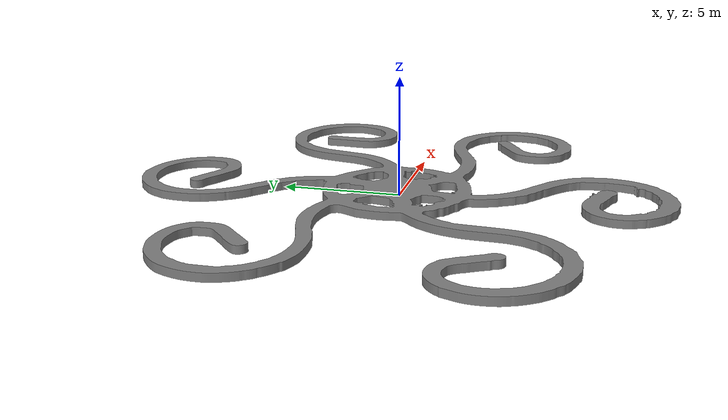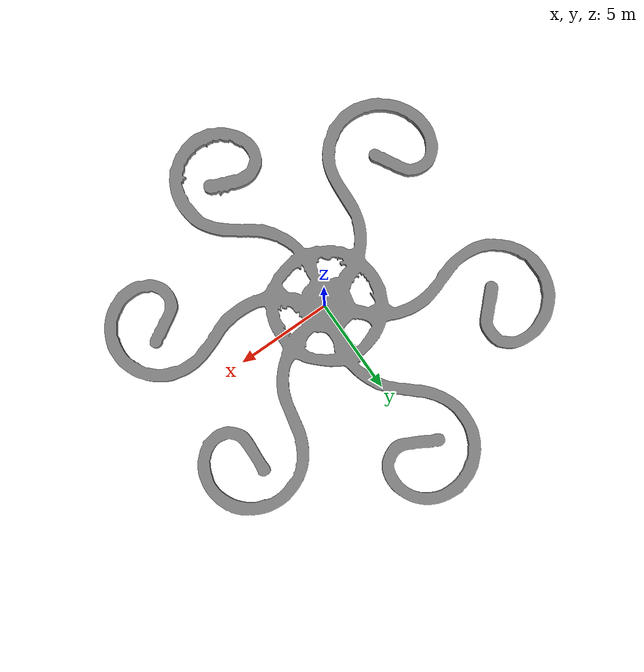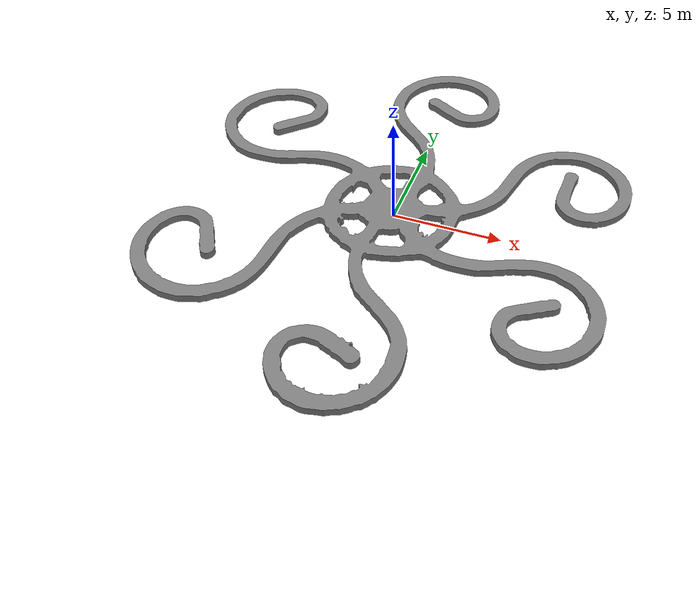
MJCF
<mujoco model="wine-rack-spiral-center-centered-z">
  <default>
    <default class="visual">
      <geom group="2" type="mesh" contype="0" conaffinity="0"/>
    </default>
    <default class="collision">
      <geom group="3" type="mesh"/>
    </default>
  </default>
  <asset>
    <mesh file="wine_glass_spiral_rack_center.obj"/>
    <mesh file="wine_glass_spiral_rack_center_0.obj"/>
    <mesh file="wine_glass_spiral_rack_center_1.obj"/>
    <mesh file="wine_glass_spiral_rack_center_2.obj"/>
    <mesh file="wine_glass_spiral_rack_center_3.obj"/>
    <mesh file="wine_glass_spiral_rack_center_4.obj"/>
    <mesh file="wine_glass_spiral_rack_center_5.obj"/>
    <mesh file="wine_glass_spiral_rack_center_6.obj"/>
    <mesh file="wine_glass_spiral_rack_center_7.obj"/>
    <mesh file="wine_glass_spiral_rack_center_8.obj"/>
    <mesh file="wine_glass_spiral_rack_center_9.obj"/>
    <mesh file="wine_glass_spiral_rack_center_10.obj"/>
    <mesh file="wine_glass_spiral_rack_center_11.obj"/>
    <mesh file="wine_glass_spiral_rack_center_12.obj"/>
    <mesh file="wine_glass_spiral_rack_center_13.obj"/>
    <mesh file="wine_glass_spiral_rack_center_14.obj"/>
    <mesh file="wine_glass_spiral_rack_center_15.obj"/>
    <mesh file="wine_glass_spiral_rack_center_16.obj"/>
    <mesh file="wine_glass_spiral_rack_center_17.obj"/>
    <mesh file="wine_glass_spiral_rack_center_18.obj"/>
    <mesh file="wine_glass_spiral_rack_center_19.obj"/>
    <mesh file="wine_glass_spiral_rack_center_20.obj"/>
    <mesh file="wine_glass_spiral_rack_center_21.obj"/>
    <mesh file="wine_glass_spiral_rack_center_22.obj"/>
    <mesh file="wine_glass_spiral_rack_center_23.obj"/>
    <mesh file="wine_glass_spiral_rack_center_24.obj"/>
    <mesh file="wine_glass_spiral_rack_center_25.obj"/>
    <mesh file="wine_glass_spiral_rack_center_26.obj"/>
    <mesh file="wine_glass_spiral_rack_center_27.obj"/>
    <mesh file="wine_glass_spiral_rack_center_28.obj"/>
    <mesh file="wine_glass_spiral_rack_center_29.obj"/>
    <mesh file="wine_glass_spiral_rack_center_30.obj"/>
    <mesh file="wine_glass_spiral_rack_center_31.obj"/>
    <mesh file="wine_glass_spiral_rack_center_32.obj"/>
    <mesh file="wine_glass_spiral_rack_center_33.obj"/>
    <mesh file="wine_glass_spiral_rack_center_34.obj"/>
    <mesh file="wine_glass_spiral_rack_center_35.obj"/>
    <mesh file="wine_glass_spiral_rack_center_36.obj"/>
    <mesh file="wine_glass_spiral_rack_center_37.obj"/>
    <mesh file="wine_glass_spiral_rack_center_38.obj"/>
    <mesh file="wine_glass_spiral_rack_center_39.obj"/>
    <mesh file="wine_glass_spiral_rack_center_40.obj"/>
    <mesh file="wine_glass_spiral_rack_center_41.obj"/>
    <mesh file="wine_glass_spiral_rack_center_42.obj"/>
    <mesh file="wine_glass_spiral_rack_center_43.obj"/>
    <mesh file="wine_glass_spiral_rack_center_44.obj"/>
    <mesh file="wine_glass_spiral_rack_center_45.obj"/>
    <mesh file="wine_glass_spiral_rack_center_46.obj"/>
    <mesh file="wine_glass_spiral_rack_center_47.obj"/>
    <mesh file="wine_glass_spiral_rack_center_48.obj"/>
    <mesh file="wine_glass_spiral_rack_center_49.obj"/>
    <mesh file="wine_glass_spiral_rack_center_50.obj"/>
    <mesh file="wine_glass_spiral_rack_center_51.obj"/>
    <mesh file="wine_glass_spiral_rack_center_52.obj"/>
    <mesh file="wine_glass_spiral_rack_center_53.obj"/>
    <mesh file="wine_glass_spiral_rack_center_54.obj"/>
    <mesh file="wine_glass_spiral_rack_center_55.obj"/>
    <mesh file="wine_glass_spiral_rack_center_56.obj"/>
    <mesh file="wine_glass_spiral_rack_center_57.obj"/>
    <mesh file="wine_glass_spiral_rack_center_58.obj"/>
    <mesh file="wine_glass_spiral_rack_center_59.obj"/>
    <mesh file="wine_glass_spiral_rack_center_60.obj"/>
    <mesh file="wine_glass_spiral_rack_center_61.obj"/>
    <mesh file="wine_glass_spiral_rack_center_62.obj"/>
    <mesh file="wine_glass_spiral_rack_center_63.obj"/>
    <mesh file="wine_glass_spiral_rack_center_64.obj"/>
    <mesh file="wine_glass_spiral_rack_center_65.obj"/>
    <mesh file="wine_glass_spiral_rack_center_66.obj"/>
  </asset>
  <worldbody>
    <body name="wine-rack-spiral-center-centered-z">
      <geom mesh="wine_glass_spiral_rack_center" class="visual"/>
      <geom mesh="wine_glass_spiral_rack_center_0" rgba="0.8925728899999805 0.22426359224605852 0.6465876229444013 1" class="collision"/>
      <geom mesh="wine_glass_spiral_rack_center_1" rgba="0.563824373768247 0.31326848932433893 0.2696090022678215 1" class="collision"/>
      <geom mesh="wine_glass_spiral_rack_center_2" rgba="0.2693413035235006 0.4473219167775049 0.4481135257984816 1" class="collision"/>
      <geom mesh="wine_glass_spiral_rack_center_3" rgba="0.41589189135813 0.7247092646962628 0.47977197456968335 1" class="collision"/>
      <geom mesh="wine_glass_spiral_rack_center_4" rgba="0.7574412127467622 0.8671529910961493 0.06249166184478361 1" class="collision"/>
      <geom mesh="wine_glass_spiral_rack_center_5" rgba="0.02810706199573898 0.933726216587625 0.17075529612765794 1" class="collision"/>
      <geom mesh="wine_glass_spiral_rack_center_6" rgba="0.5472542947396353 0.09746607880058511 0.6654954536175696 1" class="collision"/>
      <geom mesh="wine_glass_spiral_rack_center_7" rgba="0.17252111975065476 0.08537580465950134 0.9628981741798208 1" class="collision"/>
      <geom mesh="wine_glass_spiral_rack_center_8" rgba="0.5426556793281766 0.7943952874043113 0.196481522487976 1" class="collision"/>
      <geom mesh="wine_glass_spiral_rack_center_9" rgba="0.5731076728133042 0.13882029230171533 0.2901281249287494 1" class="collision"/>
      <geom mesh="wine_glass_spiral_rack_center_10" rgba="0.9015141785266471 0.29360678876672075 0.0030480629892083444 1" class="collision"/>
      <geom mesh="wine_glass_spiral_rack_center_11" rgba="0.3645138407000741 0.36411696534534255 0.06514030067294097 1" class="collision"/>
      <geom mesh="wine_glass_spiral_rack_center_12" rgba="0.6624679570285397 0.6598955628804926 0.6527800972817533 1" class="collision"/>
      <geom mesh="wine_glass_spiral_rack_center_13" rgba="0.043847256299164084 0.8382026283280729 0.689903103349682 1" class="collision"/>
      <geom mesh="wine_glass_spiral_rack_center_14" rgba="0.23675086792216637 0.3681739196363192 0.7226564493413321 1" class="collision"/>
      <geom mesh="wine_glass_spiral_rack_center_15" rgba="0.5827174349017273 0.22216723273634398 0.6110992140179832 1" class="collision"/>
      <geom mesh="wine_glass_spiral_rack_center_16" rgba="0.2061262642254731 0.06882031283635859 0.4518584855955724 1" class="collision"/>
      <geom mesh="wine_glass_spiral_rack_center_17" rgba="0.020370068091669746 0.686060019024754 0.05037521725343197 1" class="collision"/>
      <geom mesh="wine_glass_spiral_rack_center_18" rgba="0.2295389664276415 0.27765577349424786 0.8501025063066058 1" class="collision"/>
      <geom mesh="wine_glass_spiral_rack_center_19" rgba="0.08642005542000086 0.7240647471924383 0.9673722265979504 1" class="collision"/>
      <geom mesh="wine_glass_spiral_rack_center_20" rgba="0.018690593517052823 0.7176739896104836 0.46186552620103105 1" class="collision"/>
      <geom mesh="wine_glass_spiral_rack_center_21" rgba="0.12506302485859078 0.6395527493829003 0.8148516376197896 1" class="collision"/>
      <geom mesh="wine_glass_spiral_rack_center_22" rgba="0.9919034629436673 0.6239730838235426 0.19987963586197488 1" class="collision"/>
      <geom mesh="wine_glass_spiral_rack_center_23" rgba="0.6398732310721867 0.33481284912081455 0.560989476632651 1" class="collision"/>
      <geom mesh="wine_glass_spiral_rack_center_24" rgba="0.04955720674067421 0.37312880229239787 0.22965506955342174 1" class="collision"/>
      <geom mesh="wine_glass_spiral_rack_center_25" rgba="0.7417033312059753 0.09957898555780831 0.9482474370258972 1" class="collision"/>
      <geom mesh="wine_glass_spiral_rack_center_26" rgba="0.38344595197812703 0.9563889886910681 0.10617121338973357 1" class="collision"/>
      <geom mesh="wine_glass_spiral_rack_center_27" rgba="0.7175192495540174 0.3603783267256927 0.46290438769652764 1" class="collision"/>
      <geom mesh="wine_glass_spiral_rack_center_28" rgba="0.33063836074230935 0.9152978262484369 0.8658548793021938 1" class="collision"/>
      <geom mesh="wine_glass_spiral_rack_center_29" rgba="0.5073769281840687 0.15242463308728493 0.014101369585276191 1" class="collision"/>
      <geom mesh="wine_glass_spiral_rack_center_30" rgba="0.25618553655278 0.9090537304285533 0.17192170569275467 1" class="collision"/>
      <geom mesh="wine_glass_spiral_rack_center_31" rgba="0.7706131634119643 0.8872946816964032 0.6553313593156381 1" class="collision"/>
      <geom mesh="wine_glass_spiral_rack_center_32" rgba="0.9731067159946978 0.7704757753368251 0.2182028498798465 1" class="collision"/>
      <geom mesh="wine_glass_spiral_rack_center_33" rgba="0.4981134388387689 0.9615844865260234 0.7694328933920966 1" class="collision"/>
      <geom mesh="wine_glass_spiral_rack_center_34" rgba="0.8832230740386199 0.5274425891861372 0.6291264505413959 1" class="collision"/>
      <geom mesh="wine_glass_spiral_rack_center_35" rgba="0.2749287840421172 0.1694926033004841 0.5579099656046078 1" class="collision"/>
      <geom mesh="wine_glass_spiral_rack_center_36" rgba="0.7028909015115515 0.2340794778717623 0.5978272107073431 1" class="collision"/>
      <geom mesh="wine_glass_spiral_rack_center_37" rgba="0.4550534454655849 0.2306245609096671 0.879289709208907 1" class="collision"/>
      <geom mesh="wine_glass_spiral_rack_center_38" rgba="0.1437443568412904 0.8352100876833084 0.12012712519855184 1" class="collision"/>
      <geom mesh="wine_glass_spiral_rack_center_39" rgba="0.5563762733458237 0.16054785549776585 0.6877312710888113 1" class="collision"/>
      <geom mesh="wine_glass_spiral_rack_center_40" rgba="0.3058092897267888 0.7843641246867339 0.838794418597938 1" class="collision"/>
      <geom mesh="wine_glass_spiral_rack_center_41" rgba="0.9043708063329261 0.6912610189128822 0.9390081061179149 1" class="collision"/>
      <geom mesh="wine_glass_spiral_rack_center_42" rgba="0.9209395777757929 0.003914837362086754 0.47563826830723765 1" class="collision"/>
      <geom mesh="wine_glass_spiral_rack_center_43" rgba="0.9788419874959318 0.9681330733083853 0.7305604217940824 1" class="collision"/>
      <geom mesh="wine_glass_spiral_rack_center_44" rgba="0.9652085732320326 0.49188664724674525 0.9014729298988641 1" class="collision"/>
      <geom mesh="wine_glass_spiral_rack_center_45" rgba="0.2132444654288851 0.5018951162285462 0.42183271482047113 1" class="collision"/>
      <geom mesh="wine_glass_spiral_rack_center_46" rgba="0.6471317716235045 0.4513206603601633 0.5483668206826013 1" class="collision"/>
      <geom mesh="wine_glass_spiral_rack_center_47" rgba="0.010448210166075667 0.8559661730935837 0.2101317281898074 1" class="collision"/>
      <geom mesh="wine_glass_spiral_rack_center_48" rgba="0.008824627495384596 0.5435599971716017 0.8492713147893649 1" class="collision"/>
      <geom mesh="wine_glass_spiral_rack_center_49" rgba="0.5918531229222572 0.3762073766648819 0.17452018446392614 1" class="collision"/>
      <geom mesh="wine_glass_spiral_rack_center_50" rgba="0.0886105629299796 0.5551252927619319 0.6287620571726478 1" class="collision"/>
      <geom mesh="wine_glass_spiral_rack_center_51" rgba="0.610363848490246 0.9158083475718767 0.8960884935126908 1" class="collision"/>
      <geom mesh="wine_glass_spiral_rack_center_52" rgba="0.5220429147496116 0.2270520506477588 0.3557088059903104 1" class="collision"/>
      <geom mesh="wine_glass_spiral_rack_center_53" rgba="0.927392705522426 0.5917592328160064 0.977701884869032 1" class="collision"/>
      <geom mesh="wine_glass_spiral_rack_center_54" rgba="0.7633769970664123 0.8301031058881607 0.12309795080537356 1" class="collision"/>
      <geom mesh="wine_glass_spiral_rack_center_55" rgba="0.198467870822851 0.4856911928921178 0.10011333665673872 1" class="collision"/>
      <geom mesh="wine_glass_spiral_rack_center_56" rgba="0.37098574530804107 0.4695859366045141 0.23955939283106686 1" class="collision"/>
      <geom mesh="wine_glass_spiral_rack_center_57" rgba="0.708871864368367 0.09838035621398755 0.2974456530164138 1" class="collision"/>
      <geom mesh="wine_glass_spiral_rack_center_58" rgba="0.4436404929449227 0.5605558296211592 0.6073427549446664 1" class="collision"/>
      <geom mesh="wine_glass_spiral_rack_center_59" rgba="0.027205932611563344 0.32795852388642976 0.3346679696272291 1" class="collision"/>
      <geom mesh="wine_glass_spiral_rack_center_60" rgba="0.17255298484534298 0.7876372094554547 0.6161691096812496 1" class="collision"/>
      <geom mesh="wine_glass_spiral_rack_center_61" rgba="0.7683472105180391 0.07755920516106463 0.9885224158827272 1" class="collision"/>
      <geom mesh="wine_glass_spiral_rack_center_62" rgba="0.5970530596168153 0.8169825423832751 0.9340669388942975 1" class="collision"/>
      <geom mesh="wine_glass_spiral_rack_center_63" rgba="0.09235305919262704 0.05731435898268267 0.07184371413693447 1" class="collision"/>
      <geom mesh="wine_glass_spiral_rack_center_64" rgba="0.615693190455377 0.7401359724340149 0.8990202530528684 1" class="collision"/>
      <geom mesh="wine_glass_spiral_rack_center_65" rgba="0.7325932645178115 0.9196899455373401 0.2770922495339959 1" class="collision"/>
      <geom mesh="wine_glass_spiral_rack_center_66" rgba="0.24459202733126018 0.38648129490447747 0.5152807495418528 1" class="collision"/>
    </body>
  </worldbody>
</mujoco>
